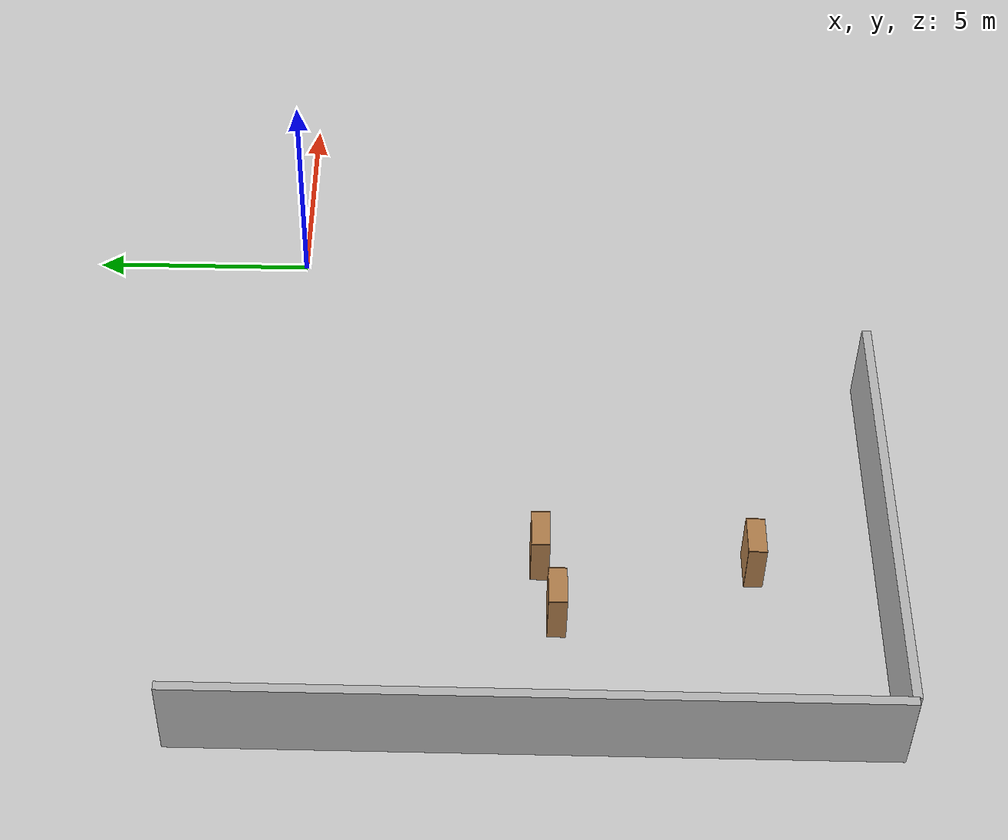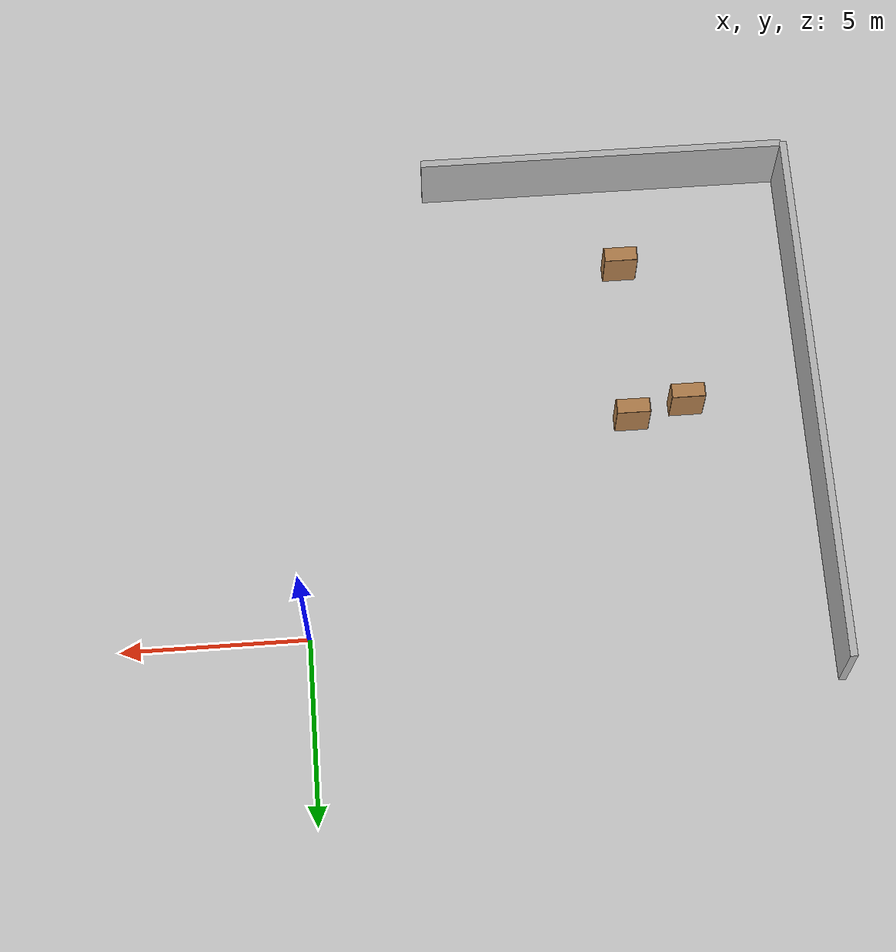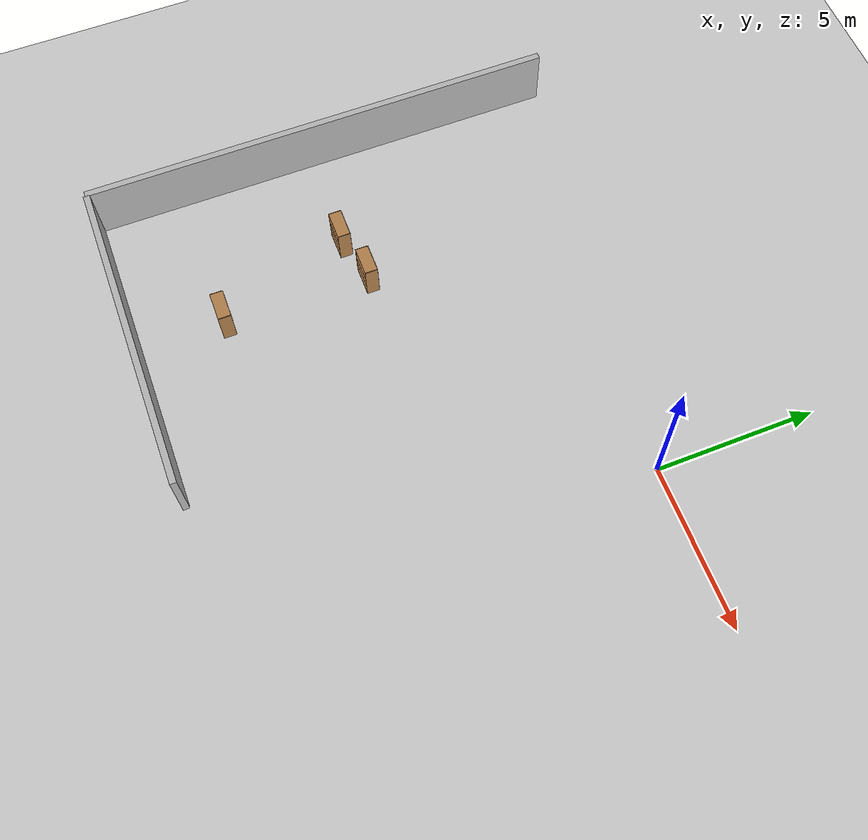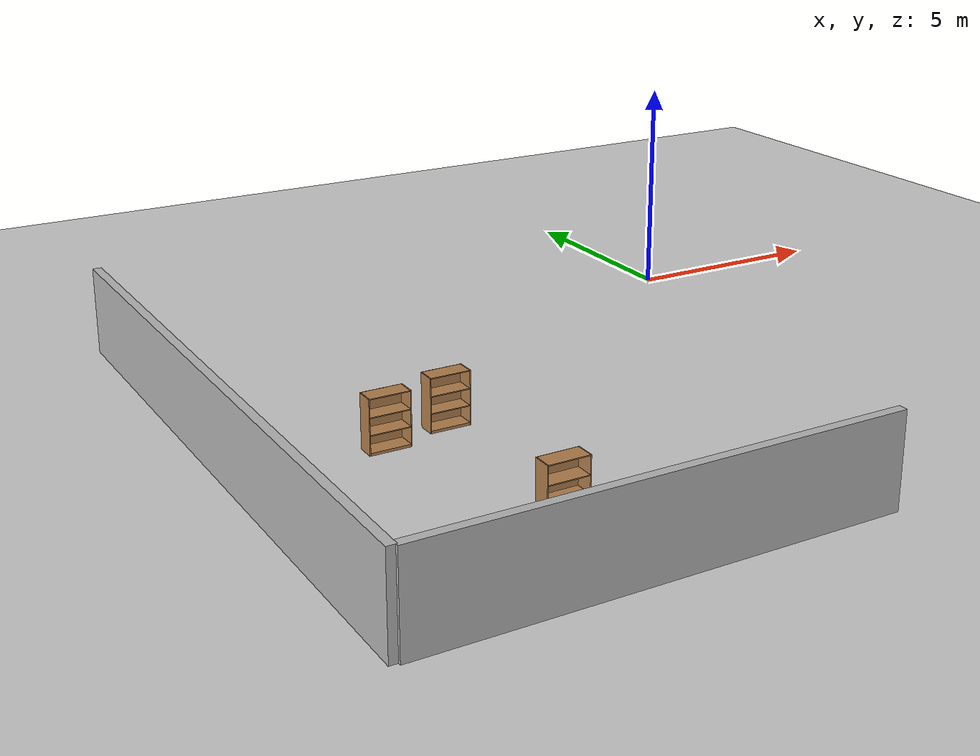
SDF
<sdf version="1.6">
 <world name="default">
  <model name="ground_plane">
   <static>1</static>
   <link name="link">
    <collision name="collision">
     <geometry><plane><normal>0 0 1</normal><size>100 100</size></plane></geometry>
     <surface><friction><ode><mu>100</mu><mu2>50</mu2></ode></friction></surface>
    </collision>
    <visual name="visual">
     <cast_shadows>0</cast_shadows>
     <geometry><plane><normal>0 0 1</normal><size>100 100</size></plane></geometry>
     <material>
      <script><uri>file://media/materials/scripts/gazebo.material</uri><name>Gazebo/Grey</name></script>
     </material>
    </visual>
    <velocity_decay><linear>0</linear><angular>0</angular></velocity_decay>
   </link>
  </model>
  <model name="wall_3_model">
   <pose>-13.8175 -5.49075 1 0 -0 0</pose>
   <static>1</static>
   <link name="wall_3_body">
    <inertial>
     <mass>1</mass>
     <inertia><ixx>1</ixx><ixy>0</ixy><ixz>0</ixz><iyy>1</iyy><iyz>0</iyz><izz>1</izz></inertia>
    </inertial>
    <collision name="collision"><geometry><box><size>0.2 15 2</size></box></geometry></collision>
    <visual name="visual"><geometry><box><size>0.2 15 2</size></box></geometry></visual>
    <velocity_decay><linear>0</linear><angular>0</angular></velocity_decay>
   </link>
  </model>
  <model name="wall_2_model_clone_0">
   <pose>-8.74815 -12.9526 1 0 -0 0</pose>
   <static>1</static>
   <link name="wall_2_body">
    <inertial>
     <mass>1</mass>
     <inertia><ixx>1</ixx><ixy>0</ixy><ixz>0</ixz><iyy>1</iyy><iyz>0</iyz><izz>1</izz></inertia>
    </inertial>
    <collision name="collision"><geometry><box><size>10 0.2 2</size></box></geometry></collision>
    <visual name="visual"><geometry><box><size>10 0.2 2</size></box></geometry></visual>
    <velocity_decay><linear>0</linear><angular>0</angular></velocity_decay>
   </link>
  </model>
  <model name="bookshelf_0_clone_3">
   <static>0</static>
   <link name="link">
    <inertial>
     <mass>1</mass>
     <inertia><ixx>1</ixx><ixy>0</ixy><ixz>0</ixz><iyy>1</iyy><iyz>0</iyz><izz>1</izz></inertia>
    </inertial>
    <collision name="back">
     <pose>0 0.005 0.6 0 -0 0</pose>
     <geometry><box><size>0.9 0.01 1.2</size></box></geometry>
    </collision>
    <visual name="visual1">
     <pose>0 0.005 0.6 0 -0 0</pose>
     <geometry><box><size>0.9 0.01 1.2</size></box></geometry>
     <material>
      <script><uri>file://media/materials/scripts/gazebo.material</uri><name>Gazebo/Wood</name></script>
     </material>
    </visual>
    <collision name="left_side">
     <pose>0.45 -0.195 0.6 0 -0 0</pose>
     <geometry><box><size>0.02 0.4 1.2</size></box></geometry>
    </collision>
    <visual name="visual2">
     <pose>0.45 -0.195 0.6 0 -0 0</pose>
     <geometry><box><size>0.02 0.4 1.2</size></box></geometry>
     <material>
      <script><uri>file://media/materials/scripts/gazebo.material</uri><name>Gazebo/Wood</name></script>
     </material>
    </visual>
    <collision name="right_side">
     <pose>-0.45 -0.195 0.6 0 -0 0</pose>
     <geometry><box><size>0.02 0.4 1.2</size></box></geometry>
    </collision>
    <visual name="visual3">
     <pose>-0.45 -0.195 0.6 0 -0 0</pose>
     <geometry><box><size>0.02 0.4 1.2</size></box></geometry>
     <material>
      <script><uri>file://media/materials/scripts/gazebo.material</uri><name>Gazebo/Wood</name></script>
     </material>
    </visual>
    <collision name="bottom">
     <pose>0 -0.195 0.03 0 -0 0</pose>
     <geometry><box><size>0.88 0.4 0.06</size></box></geometry>
    </collision>
    <visual name="visual4">
     <pose>0 -0.195 0.03 0 -0 0</pose>
     <geometry><box><size>0.88 0.4 0.06</size></box></geometry>
     <material>
      <script><uri>file://media/materials/scripts/gazebo.material</uri><name>Gazebo/Wood</name></script>
     </material>
    </visual>
    <collision name="top">
     <pose>0 -0.195 1.19 0 -0 0</pose>
     <geometry><box><size>0.88 0.4 0.02</size></box></geometry>
    </collision>
    <visual name="visual5">
     <pose>0 -0.195 1.19 0 -0 0</pose>
     <geometry><box><size>0.88 0.4 0.02</size></box></geometry>
     <material>
      <script><uri>file://media/materials/scripts/gazebo.material</uri><name>Gazebo/Wood</name></script>
     </material>
    </visual>
    <collision name="low_shelf">
     <pose>0 -0.195 0.43 0 -0 0</pose>
     <geometry><box><size>0.88 0.4 0.02</size></box></geometry>
    </collision>
    <visual name="visual6">
     <pose>0 -0.195 0.43 0 -0 0</pose>
     <geometry><box><size>0.88 0.4 0.02</size></box></geometry>
     <material>
      <script><uri>file://media/materials/scripts/gazebo.material</uri><name>Gazebo/Wood</name></script>
     </material>
    </visual>
    <collision name="high_shelf">
     <pose>0 -0.195 0.8 0 -0 0</pose>
     <geometry><box><size>0.88 0.4 0.02</size></box></geometry>
    </collision>
    <visual name="visual7">
     <pose>0 -0.195 0.8 0 -0 0</pose>
     <geometry><box><size>0.88 0.4 0.02</size></box></geometry>
     <material>
      <script><uri>file://media/materials/scripts/gazebo.material</uri><name>Gazebo/Wood</name></script>
     </material>
    </visual>
    <velocity_decay><linear>0</linear><angular>0</angular></velocity_decay>
   </link>
   <pose>-9.08829 -10.0179 1e-06 -6.3e-05 -0 0</pose>
  </model>
  <model name="bookshelf_0_clone_4">
   <static>0</static>
   <link name="link">
    <inertial>
     <mass>1</mass>
     <inertia><ixx>1</ixx><ixy>0</ixy><ixz>0</ixz><iyy>1</iyy><iyz>0</iyz><izz>1</izz></inertia>
    </inertial>
    <collision name="back">
     <pose>0 0.005 0.6 0 -0 0</pose>
     <geometry><box><size>0.9 0.01 1.2</size></box></geometry>
    </collision>
    <visual name="visual1">
     <pose>0 0.005 0.6 0 -0 0</pose>
     <geometry><box><size>0.9 0.01 1.2</size></box></geometry>
     <material>
      <script><uri>file://media/materials/scripts/gazebo.material</uri><name>Gazebo/Wood</name></script>
     </material>
    </visual>
    <collision name="left_side">
     <pose>0.45 -0.195 0.6 0 -0 0</pose>
     <geometry><box><size>0.02 0.4 1.2</size></box></geometry>
    </collision>
    <visual name="visual2">
     <pose>0.45 -0.195 0.6 0 -0 0</pose>
     <geometry><box><size>0.02 0.4 1.2</size></box></geometry>
     <material>
      <script><uri>file://media/materials/scripts/gazebo.material</uri><name>Gazebo/Wood</name></script>
     </material>
    </visual>
    <collision name="right_side">
     <pose>-0.45 -0.195 0.6 0 -0 0</pose>
     <geometry><box><size>0.02 0.4 1.2</size></box></geometry>
    </collision>
    <visual name="visual3">
     <pose>-0.45 -0.195 0.6 0 -0 0</pose>
     <geometry><box><size>0.02 0.4 1.2</size></box></geometry>
     <material>
      <script><uri>file://media/materials/scripts/gazebo.material</uri><name>Gazebo/Wood</name></script>
     </material>
    </visual>
    <collision name="bottom">
     <pose>0 -0.195 0.03 0 -0 0</pose>
     <geometry><box><size>0.88 0.4 0.06</size></box></geometry>
    </collision>
    <visual name="visual4">
     <pose>0 -0.195 0.03 0 -0 0</pose>
     <geometry><box><size>0.88 0.4 0.06</size></box></geometry>
     <material>
      <script><uri>file://media/materials/scripts/gazebo.material</uri><name>Gazebo/Wood</name></script>
     </material>
    </visual>
    <collision name="top">
     <pose>0 -0.195 1.19 0 -0 0</pose>
     <geometry><box><size>0.88 0.4 0.02</size></box></geometry>
    </collision>
    <visual name="visual5">
     <pose>0 -0.195 1.19 0 -0 0</pose>
     <geometry><box><size>0.88 0.4 0.02</size></box></geometry>
     <material>
      <script><uri>file://media/materials/scripts/gazebo.material</uri><name>Gazebo/Wood</name></script>
     </material>
    </visual>
    <collision name="low_shelf">
     <pose>0 -0.195 0.43 0 -0 0</pose>
     <geometry><box><size>0.88 0.4 0.02</size></box></geometry>
    </collision>
    <visual name="visual6">
     <pose>0 -0.195 0.43 0 -0 0</pose>
     <geometry><box><size>0.88 0.4 0.02</size></box></geometry>
     <material>
      <script><uri>file://media/materials/scripts/gazebo.material</uri><name>Gazebo/Wood</name></script>
     </material>
    </visual>
    <collision name="high_shelf">
     <pose>0 -0.195 0.8 0 -0 0</pose>
     <geometry><box><size>0.88 0.4 0.02</size></box></geometry>
    </collision>
    <visual name="visual7">
     <pose>0 -0.195 0.8 0 -0 0</pose>
     <geometry><box><size>0.88 0.4 0.02</size></box></geometry>
     <material>
      <script><uri>file://media/materials/scripts/gazebo.material</uri><name>Gazebo/Wood</name></script>
     </material>
    </visual>
    <velocity_decay><linear>0</linear><angular>0</angular></velocity_decay>
   </link>
   <pose>-9.00217 -5.4424 1e-06 -6.3e-05 -0 0</pose>
  </model>
  <model name="bookshelf_0_clone_14">
   <static>0</static>
   <link name="link">
    <inertial>
     <mass>1</mass>
     <inertia><ixx>1</ixx><ixy>0</ixy><ixz>0</ixz><iyy>1</iyy><iyz>0</iyz><izz>1</izz></inertia>
    </inertial>
    <collision name="back">
     <pose>0 0.005 0.6 0 -0 0</pose>
     <geometry><box><size>0.9 0.01 1.2</size></box></geometry>
    </collision>
    <visual name="visual1">
     <pose>0 0.005 0.6 0 -0 0</pose>
     <geometry><box><size>0.9 0.01 1.2</size></box></geometry>
     <material>
      <script><uri>file://media/materials/scripts/gazebo.material</uri><name>Gazebo/Wood</name></script>
     </material>
    </visual>
    <collision name="left_side">
     <pose>0.45 -0.195 0.6 0 -0 0</pose>
     <geometry><box><size>0.02 0.4 1.2</size></box></geometry>
    </collision>
    <visual name="visual2">
     <pose>0.45 -0.195 0.6 0 -0 0</pose>
     <geometry><box><size>0.02 0.4 1.2</size></box></geometry>
     <material>
      <script><uri>file://media/materials/scripts/gazebo.material</uri><name>Gazebo/Wood</name></script>
     </material>
    </visual>
    <collision name="right_side">
     <pose>-0.45 -0.195 0.6 0 -0 0</pose>
     <geometry><box><size>0.02 0.4 1.2</size></box></geometry>
    </collision>
    <visual name="visual3">
     <pose>-0.45 -0.195 0.6 0 -0 0</pose>
     <geometry><box><size>0.02 0.4 1.2</size></box></geometry>
     <material>
      <script><uri>file://media/materials/scripts/gazebo.material</uri><name>Gazebo/Wood</name></script>
     </material>
    </visual>
    <collision name="bottom">
     <pose>0 -0.195 0.03 0 -0 0</pose>
     <geometry><box><size>0.88 0.4 0.06</size></box></geometry>
    </collision>
    <visual name="visual4">
     <pose>0 -0.195 0.03 0 -0 0</pose>
     <geometry><box><size>0.88 0.4 0.06</size></box></geometry>
     <material>
      <script><uri>file://media/materials/scripts/gazebo.material</uri><name>Gazebo/Wood</name></script>
     </material>
    </visual>
    <collision name="top">
     <pose>0 -0.195 1.19 0 -0 0</pose>
     <geometry><box><size>0.88 0.4 0.02</size></box></geometry>
    </collision>
    <visual name="visual5">
     <pose>0 -0.195 1.19 0 -0 0</pose>
     <geometry><box><size>0.88 0.4 0.02</size></box></geometry>
     <material>
      <script><uri>file://media/materials/scripts/gazebo.material</uri><name>Gazebo/Wood</name></script>
     </material>
    </visual>
    <collision name="low_shelf">
     <pose>0 -0.195 0.43 0 -0 0</pose>
     <geometry><box><size>0.88 0.4 0.02</size></box></geometry>
    </collision>
    <visual name="visual6">
     <pose>0 -0.195 0.43 0 -0 0</pose>
     <geometry><box><size>0.88 0.4 0.02</size></box></geometry>
     <material>
      <script><uri>file://media/materials/scripts/gazebo.material</uri><name>Gazebo/Wood</name></script>
     </material>
    </visual>
    <collision name="high_shelf">
     <pose>0 -0.195 0.8 0 -0 0</pose>
     <geometry><box><size>0.88 0.4 0.02</size></box></geometry>
    </collision>
    <visual name="visual7">
     <pose>0 -0.195 0.8 0 -0 0</pose>
     <geometry><box><size>0.88 0.4 0.02</size></box></geometry>
     <material>
      <script><uri>file://media/materials/scripts/gazebo.material</uri><name>Gazebo/Wood</name></script>
     </material>
    </visual>
    <velocity_decay><linear>0</linear><angular>0</angular></velocity_decay>
   </link>
   <pose>-10.5195 -5.79484 0 -3.2e-05 0 0</pose>
  </model>
 </world>
</sdf>
